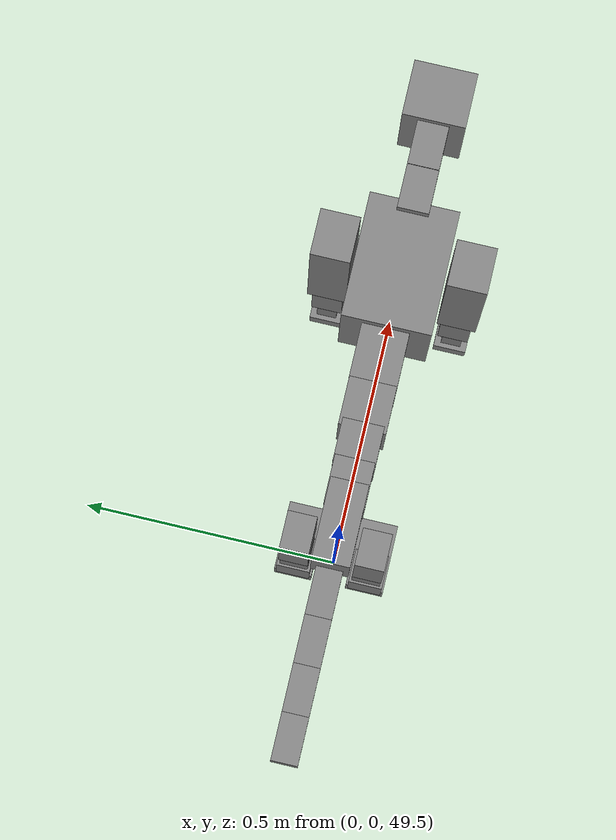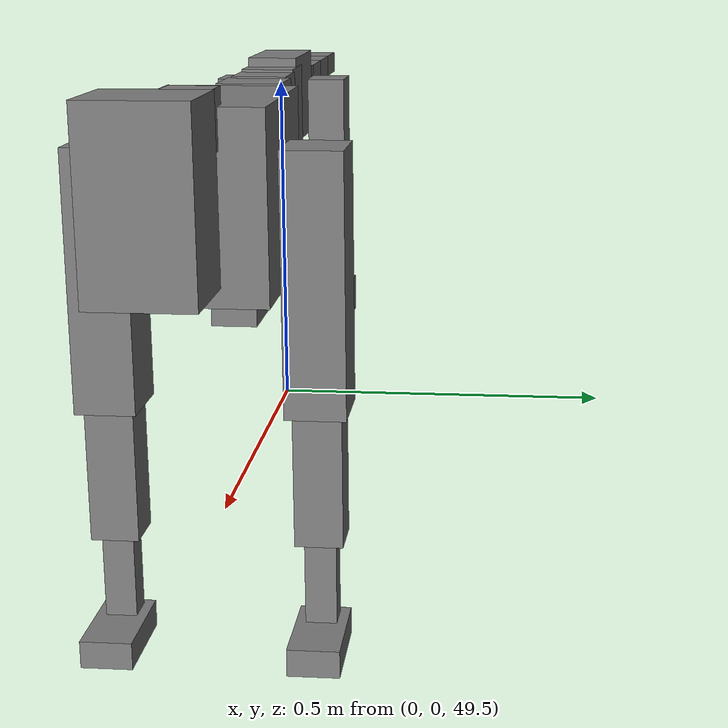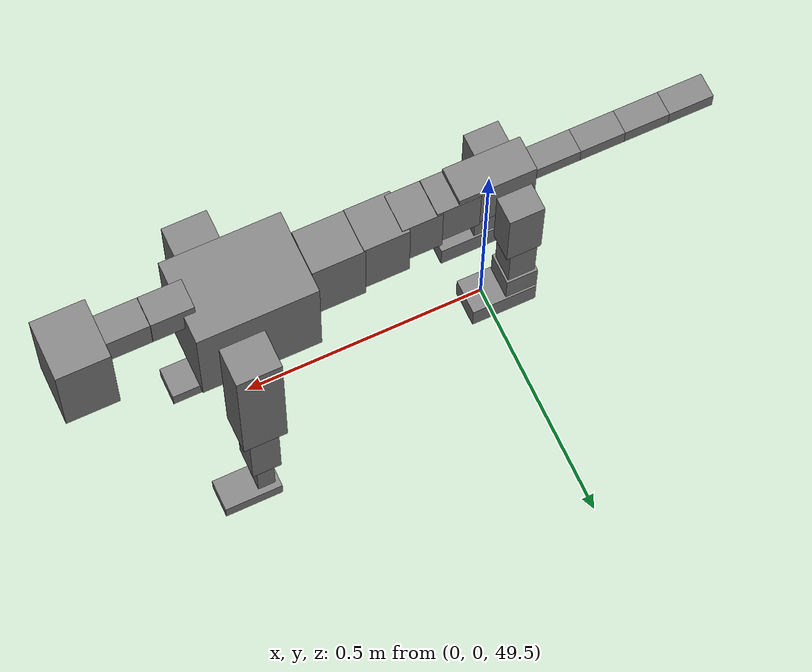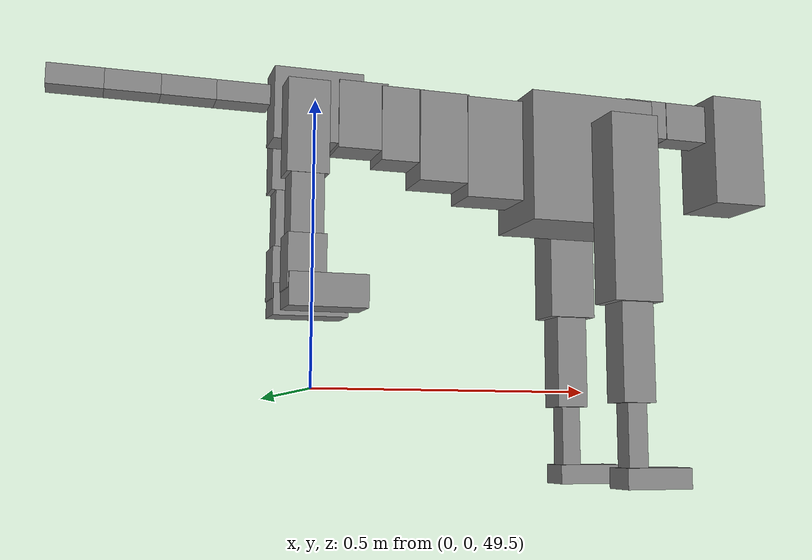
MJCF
<mujoco model="dog">

    <default>
        <joint armature="0.02" stiffness="1" damping="0.2" limited="true"/>
        <geom condim="3" friction="1 0.05 0.05" margin="0.01"/>
        <motor ctrllimited="true" ctrlrange="-1.0 1.0" forcelimited="true" gear="50"/>
    </default>

    <compiler inertiafromgeom="true" angle="radian"/>

    <option timestep="0.016" iterations="50" tolerance="1e-10" solver="Newton" jacobian="dense" cone="pyramidal"/>

    <size nconmax="20000" njmax="60000" nstack="5000000"/>
    <visual>
        <map force="0.1" zfar="30"/>
        <rgba haze="0.15 0.25 0.35 1"/>
        <quality shadowsize="2048"/>
        <global offwidth="800" offheight="800"/>
    </visual>

    <asset>
        <texture type="skybox" builtin="gradient" rgb1="0.3 0.5 0.7" rgb2="0 0 0" width="512" height="512"/>
        <texture name="texplane" type="2d" builtin="checker" rgb1=".2 .3 .4" rgb2=".1 0.15 0.2" width="512" height="512"
                 mark="cross" markrgb=".8 .8 .8"/>
        <texture name="texgeom" type="cube" builtin="flat" mark="cross" width="127" height="1278" rgb1="0.8 0.6 0.4"
                 rgb2="0.8 0.6 0.4" markrgb="1 1 1" random="0.01"/>

        <material name="matplane" reflectance="0.3" texture="texplane" texrepeat="1 1" texuniform="true"/>
        <material name="matgeom" texture="texgeom" texuniform="true" rgba="0.8 0.6 .4 1"/>
    </asset>

    <worldbody>
        <geom name="floor" pos="0 0 0" size="0 0 .25" type="plane" material="matplane" condim="3"/>

        <light directional="false" diffuse=".2 .2 .2" specular="0 0 0" pos="0 0 5" dir="0 0 -1" castshadow="false"/>
        <light mode="targetbodycom" target="torso" directional="false" diffuse=".8 .8 .8" specular="0.3 0.3 0.3"
               pos="0 0 4.0" dir="0 0 -1"/>

        <body name="root" pos="0 0 50">
            <freejoint name="root_1"/>
            <geom type="box" pos="0 0 -0.02" size="0.0774  0.0358  0.063" density="2030"/>

            <body name="spine1" pos="0.054 0 0">
                <joint name="spine1_y" axis="0 1 0" range="0 0.7" limited="true"/>
                <geom type="box" pos="0.02375 0 -0.03" size="0.04375  0.0375  0.05985" density="2030"/>

                <body name="spine2" pos="0.0612 0 0">
                    <joint name="spine2_y" axis="0 1 0" range="-0.15 0.15" limited="true"/>
                    <geom type="box" pos="0.03555  0  -0.04" size="0.04055  0.039  0.06615" density="2030"/>

                    <body name="spine3" pos="0.0730 0 0">
                        <joint name="spine3_y" axis="0 1 0" range="-0.15 0.15" limited="true"/>
                        <geom type="box" pos="0.03555  0  -0.057" size="0.04555  0.0445  0.081" density="2030"/>

                        <body name="spine4" pos="0.0780 0 0">
                            <joint name="spine4_y" axis="0 1 0" range="-0.15 0.15" limited="true"/>
                            <geom type="box" pos="0.05265  0  -0.07" size="0.05265  0.045  0.09135" density="2030"/>

                            <body name="torso" pos="0.1082 0 0">
                                <joint name="torso_y" axis="0 1 0" range="-0.15 0.15" limited="true"/>
                                <geom type="box" pos="0.11925  0  -0.085" size="0.11925  0.085  0.11745"
                                      density="2030"/>

                                <body name="neck1" pos="0.2160  0   0.0180">
                                    <joint name="neck1_y" axis="0 1 0" range="-1.2  -1" limited="true"/>
                                    <geom type="box" pos="0.0423  0  0" size="0.0423  0.03  0.036" density="2325"/>

                                    <body name="neck2" pos="0.0853  0  0">
                                        <joint name="neck2_y" axis="0 1 0" range="0.1  0" limited="true"/>
                                        <geom type="box" pos="0.0423  0  0" size="0.0423  0.03  0.036" density="2325"/>

                                        <body name="head" pos="0.0853  0  0">
                                            <joint name="head_y" axis="0 1 0" range="-0.3  -0.2" limited="true"/>
                                            <geom type="box" pos="0.0531  0  -0.055" size="0.0531  0.06  0.1044"
                                                  density="4030"/>

                                        </body>
                                    </body>
                                </body>

                                <body name="front_shoulder" pos="0.156  0   -0.0480">
                                    <joint name="front_shoulder_y" axis="0 1 0" range="-1 1.5" limited="true"/>
                                    <geom type="box" pos="0 0.13 -0.1381" size="0.0449  0.0384  0.1648" density="1158"/>
                                    <geom type="box" pos="0 -0.13 -0.1381" size="0.0449  0.0384  0.1648"
                                          density="1158"/>

                                    <body name="front_elbow" pos="0  0  -0.2763">
                                        <joint name="front_elbow_y" axis="0 1 0" range="-2 0" limited="true"/>
                                        <geom type="box" pos="0 0.13 -0.0991" size="0.0300  0.0307  0.0991"
                                              density="1081"/>
                                        <geom type="box" pos="0 -0.13 -0.0991" size="0.0300  0.0307  0.0991"
                                              density="1081"/>

                                        <body name="front_wrist" pos="0  0  -0.1982">
                                            <joint name="front_wrist_y" axis="0 1 0" range="-0.2 0" limited="true"/>
                                            <geom type="box" pos="0 0.13 -0.0619" size="0.0181  0.0201  0.0751"
                                                  density="1664"/>
                                            <geom type="box" pos="0 -0.13 -0.0619" size="0.0181  0.0201  0.0751"
                                                  density="1664"/>

                                            <body name="front_finger_end" pos="0  0  -0.1239">
                                                <joint name="front_finger_y" axis="0 1 0" range="-0.4 1"
                                                       limited="true"/>
                                                <geom type="box" pos="0.0330  0.13  -0.0028"
                                                      size="0.0606  0.0330  0.0178" density="1515"/>
                                                <geom type="box" pos="0.0330  -0.13  -0.0028"
                                                      size="0.0606  0.0330  0.0178" density="1515"/>

                                            </body>

                                        </body>
                                    </body>
                                </body>

                            </body>
                        </body>
                    </body>
                </body>
            </body>

            <body name="back_hip" pos="-0.03 0 -0.018">
                <joint name="back_hip_y" axis="0 1 0" range="-1.5 0.3" limited="true"/>
                <geom type="box" pos="0 0.07 -0.0565" size="0.0352  0.0276  0.0793" density="1154"/>
                <geom type="box" pos="0 -0.07 -0.0565" size="0.0352  0.0276  0.0793" density="1154"/>

                <body name="back_knee" pos="0  0  -0.1131">
                    <joint name="back_knee_y" axis="0 1 0" range="0 2.8" limited="true"/>
                    <geom type="box" pos="0 0.07 -0.0673" size="0.0276  0.0272  0.0829" density="1227"/>
                    <geom type="box" pos="0 -0.07 -0.0673" size="0.0276  0.0272  0.0829" density="1227"/>

                    <body name="back_ankle" pos="0  0  -0.1346">
                        <joint name="back_ankle_y" axis="0 1 0" range="-2.2 0" limited="true"/>
                        <geom type="box" pos="0 0.07 -0.0339" size="0.0321  0.0321  0.0452" density="1284"/>
                        <geom type="box" pos="0 -0.07 -0.0339" size="0.0321  0.0321  0.0452" density="1284"/>

                        <body name="back_toe_end" pos="0  0  -0.0678">
                            <joint name="back_toe_y" axis="0 1 0" range="-0.4 1" limited="true"/>
                            <geom type="box" pos="0.0361  0.07  -0.0126" size="0.0661  0.0361  0.0276" density="1515"/>
                            <geom type="box" pos="0.0361  -0.07  -0.0126" size="0.0661  0.0361  0.0276" density="1515"/>

                        </body>
                    </body>
                </body>
            </body>

            <body name="tail1" pos="-0.074 0 -0.006">
                <joint name="tail1_y" axis="0 1 0" range="-0.2 0.2" limited="true"/>
                <geom type="box" pos="-0.0536  0  0" size="0.045  0.025  0.0175" density="1587"/>

                <body name="tail2" pos="-0.09 0 0">
                    <joint name="tail2_y" axis="0 1 0" range="-0.2 0.2" limited="true"/>
                    <geom type="box" pos="-0.0536  0  0" size="0.045  0.025  0.0175" density="1587"/>

                    <body name="tail3" pos="-0.09 0 0">
                        <joint name="tail3_y" axis="0 1 0" range="-0.2 0.2" limited="true"/>
                        <geom type="box" pos="-0.0536  0  0" size="0.045  0.025  0.0175" density="1587"/>

                        <body name="tail4" pos="-0.09 0 0">
                            <joint name="tail4_y" axis="0 1 0" range="-0.2 0.2" limited="true"/>
                            <geom type="box" pos="-0.0536  0  0" size="0.045  0.025  0.0175" density="1587"/>

                        </body>
                    </body>
                </body>
            </body>
        </body>
    </worldbody>

    <actuator>
        <motor joint="spine1_y" forcerange="-150 150     "/>
        <motor joint="spine2_y" forcerange="-150 150     "/>
        <motor joint="spine3_y" forcerange="-150 150     "/>
        <motor joint="spine4_y" forcerange="-150 150     "/>
        <motor joint="torso_y" forcerange="-150 150     "/>
        <motor joint="neck1_y" forcerange="-100 100       "/>
        <motor joint="neck2_y" forcerange="-100 100       "/>
        <motor joint="head_y" forcerange="-150 150       "/>
        <motor joint="front_shoulder_y" forcerange="-166.11 189.70"/>
        <motor joint="front_elbow_y" forcerange="-172.12 150.82"/>
        <motor joint="front_wrist_y" forcerange="-98.22 62.56"/>
        <motor joint="front_finger_y" forcerange="-98.11 38.06"/>
        <motor joint="back_hip_y" forcerange="-230.79 337.22"/>
        <motor joint="back_knee_y" forcerange="-338.34 256.73"/>
        <motor joint="back_angle_y" forcerange="-240.07 174.05"/>
        <motor joint="back_toe_y" forcerange="-69.57 139.06"/>
        <motor joint="tail1_y" forcerange="-50 50     "/>
        <motor joint="tail2_y" forcerange="-50 50     "/>
        <motor joint="tail3_y" forcerange="-50 50     "/>
        <motor joint="tail4_y" forcerange="-50 50     "/>
    </actuator>
</mujoco>
